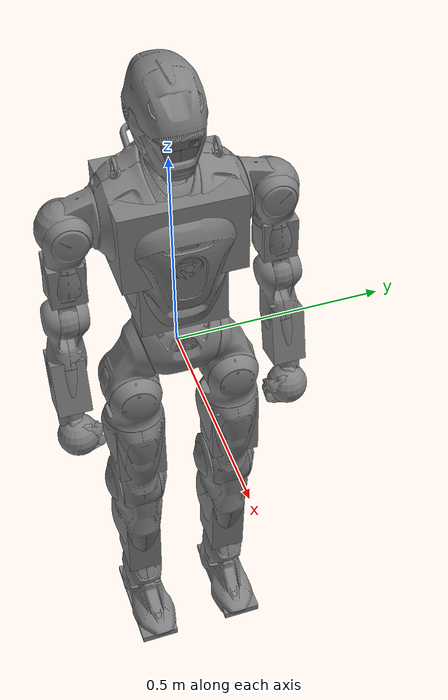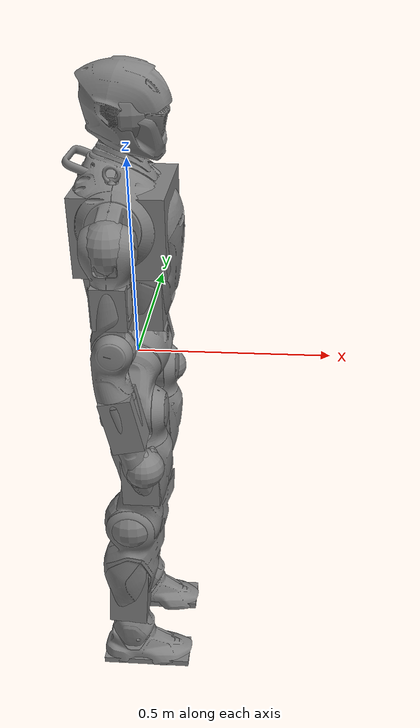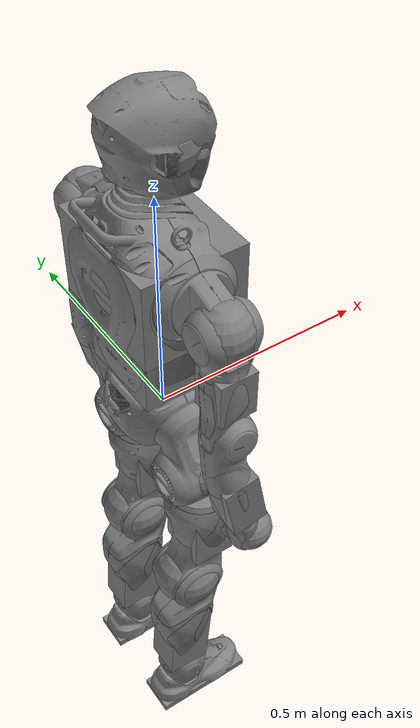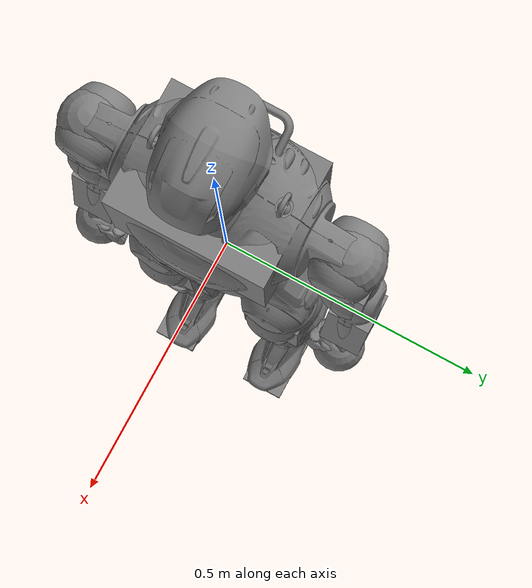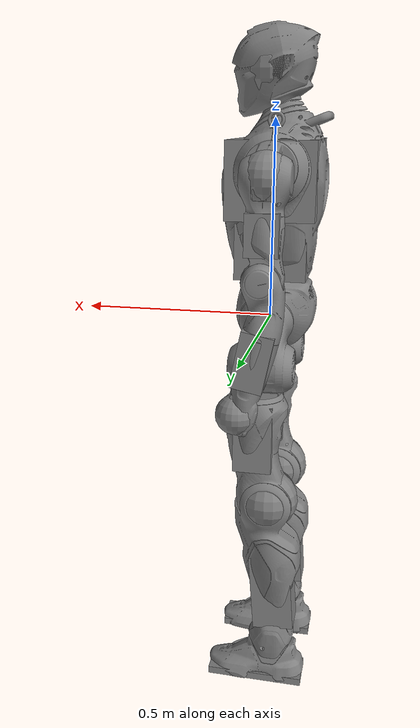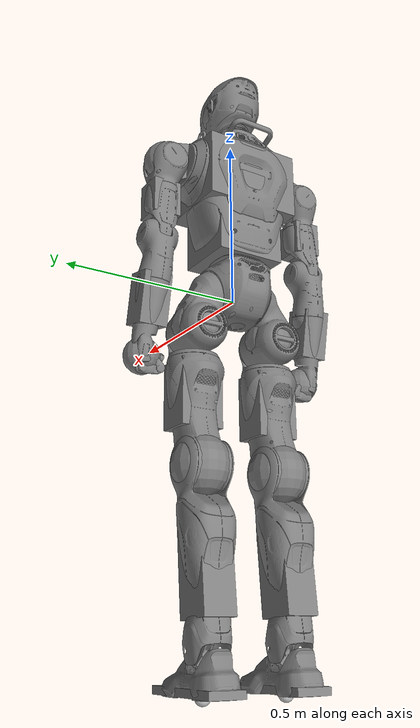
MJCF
<mujoco model="t800">
  <compiler angle="radian" meshdir="meshes_obj" />
  <asset>
    <mesh name="LINK_BASE" content_type="model/obj" file="LINK_BASE.obj" />
    <mesh name="LINK_HIP_PITCH_L" content_type="model/obj" file="LINK_HIP_PITCH_L.obj" />
    <mesh name="LINK_HIP_ROLL_L" content_type="model/obj" file="LINK_HIP_ROLL_L.obj" />
    <mesh name="LINK_HIP_YAW_L" content_type="model/obj" file="LINK_HIP_YAW_L.obj" />
    <mesh name="LINK_KNEE_PITCH_L" content_type="model/obj" file="LINK_KNEE_PITCH_L.obj" />
    <mesh name="LINK_ANKLE_PITCH_L" content_type="model/obj" file="LINK_ANKLE_PITCH_L.obj" />
    <mesh name="LINK_ANKLE_ROLL_L" content_type="model/obj" file="LINK_ANKLE_ROLL_L.obj" />
    <mesh name="LINK_HIP_PITCH_R" content_type="model/obj" file="LINK_HIP_PITCH_R.obj" />
    <mesh name="LINK_HIP_ROLL_R" content_type="model/obj" file="LINK_HIP_ROLL_R.obj" />
    <mesh name="LINK_HIP_YAW_R" content_type="model/obj" file="LINK_HIP_YAW_R.obj" />
    <mesh name="LINK_KNEE_PITCH_R" content_type="model/obj" file="LINK_KNEE_PITCH_R.obj" />
    <mesh name="LINK_ANKLE_PITCH_R" content_type="model/obj" file="LINK_ANKLE_PITCH_R.obj" />
    <mesh name="LINK_ANKLE_ROLL_R" content_type="model/obj" file="LINK_ANKLE_ROLL_R.obj" />
    <mesh name="LINK_TORSO_YAW" content_type="model/obj" file="LINK_TORSO_YAW.obj" />
    <mesh name="LINK_SHOULDER_PITCH_L" content_type="model/obj" file="LINK_SHOULDER_PITCH_L.obj" />
    <mesh name="LINK_SHOULDER_ROLL_L" content_type="model/obj" file="LINK_SHOULDER_ROLL_L.obj" />
    <mesh name="LINK_SHOULDER_YAW_L" content_type="model/obj" file="LINK_SHOULDER_YAW_L.obj" />
    <mesh name="LINK_ELBOW_PITCH_L" content_type="model/obj" file="LINK_ELBOW_PITCH_L.obj" />
    <mesh name="LINK_ELBOW_YAW_L" content_type="model/obj" file="LINK_ELBOW_YAW_L.obj" />
    <mesh name="LINK_SHOULDER_PITCH_R" content_type="model/obj" file="LINK_SHOULDER_PITCH_R.obj" />
    <mesh name="LINK_SHOULDER_ROLL_R" content_type="model/obj" file="LINK_SHOULDER_ROLL_R.obj" />
    <mesh name="LINK_SHOULDER_YAW_R" content_type="model/obj" file="LINK_SHOULDER_YAW_R.obj" />
    <mesh name="LINK_ELBOW_PITCH_R" content_type="model/obj" file="LINK_ELBOW_PITCH_R.obj" />
    <mesh name="LINK_ELBOW_YAW_R" content_type="model/obj" file="LINK_ELBOW_YAW_R.obj" />
    <mesh name="LINK_HEAD_PITCH" content_type="model/obj" file="LINK_HEAD_PITCH.obj" />
    <mesh name="LINK_HEAD_YAW" content_type="model/obj" file="LINK_HEAD_YAW.obj" />
  </asset>
  <worldbody>
    <body name="LINK_BASE">
      <freejoint name="root" />
      <geom type="mesh" contype="0" conaffinity="0" group="1" density="0" mesh="LINK_BASE" />
      <geom size="0.09" pos="-0.01 0 0.01" />
      <body name="LINK_HIP_PITCH_L" pos="0 0.079178 0">
        <inertial pos="0.0061914 0.039194 -0.0989976" quat="0.703048 -0.000940502 -0.0835001 0.706222" mass="3.53619" diaginertia="0.00795732 0.00716152 0.00476425" />
        <joint name="J00_HIP_PITCH_L" pos="0 0 0" axis="0 0.965926 -0.258819" range="-3.316 2.269" actuatorfrcrange="-415 415" />
        <geom type="mesh" contype="0" conaffinity="0" group="1" density="0" mesh="LINK_HIP_PITCH_L" />
        <geom size="0.07" pos="0 0.04 -0.1" />
        <body name="LINK_HIP_ROLL_L" pos="0.004662 0.040322 -0.10752">
          <inertial pos="0.0375309 4.95e-06 -0.0348455" quat="0.954117 -3.76557e-05 0.299433 -0.000109257" mass="0.851442" diaginertia="0.00291994 0.00257237 0.0014565" />
          <joint name="J01_HIP_ROLL_L" pos="0 0 0" axis="1 0 0" range="-1.082 2.059" actuatorfrcrange="-370 370" />
          <geom type="mesh" contype="0" conaffinity="0" group="1" density="0" mesh="LINK_HIP_ROLL_L" />
          <body name="LINK_HIP_YAW_L" pos="0.0094616 0 -0.080512">
            <inertial pos="-0.0182984 0.00236123 -0.176347" quat="0.709176 0.0588188 0.0462079 0.701053" mass="7.19482" diaginertia="0.115656 0.11402 0.0107766" />
            <joint name="J02_HIP_YAW_L" pos="0 0 0" axis="0 0 1" range="-1.42245 3.60228" actuatorfrcrange="-222 222" />
            <geom type="mesh" contype="0" conaffinity="0" group="1" density="0" mesh="LINK_HIP_YAW_L" />
            <geom size="0.05 0.06 0.09" pos="0 0.002 -0.1" type="box" />
            <body name="LINK_KNEE_PITCH_L" pos="-0.037707 0 -0.28792">
              <inertial pos="-0.0197449 0.00139162 -0.211907" quat="0.475454 0.0210361 0.0168989 0.879327" mass="5.99503" diaginertia="0.0858454 0.0856511 0.0115715" />
              <joint name="J03_KNEE_PITCH_L" pos="0 0 0" axis="0 1 0" range="0 2.355" actuatorfrcrange="-415 415" />
              <geom type="mesh" contype="0" conaffinity="0" group="1" density="0" mesh="LINK_KNEE_PITCH_L" />
              <geom size="0.08" />
              <geom size="0.055 0.045 0.12" pos="-0.02 0 -0.25" quat="0.9992 0 0.0399893 0" type="box" />
              <body name="LINK_ANKLE_PITCH_L" pos="-0.0027168 0 -0.43867">
                <inertial pos="-3.678e-05 0 -0.00887033" quat="0.707027 -0.0106245 -0.0106245 0.707027" mass="0.144221" diaginertia="8.493e-05 6.78768e-05 3.82432e-05" />
                <joint name="J04_ANKLE_PITCH_L" pos="0 0 0" axis="0 1 0" range="-0.68068 0.68068" actuatorfrcrange="-160 160" />
                <geom type="mesh" contype="0" conaffinity="0" group="1" density="0" mesh="LINK_ANKLE_PITCH_L" />
                <body name="LINK_ANKLE_ROLL_L" pos="0.0011073 0 -0.037928">
                  <inertial pos="-0.00128652 -0.00120557 -0.0229836" quat="0.461914 0.54264 0.559403 0.423375" mass="1.49539" diaginertia="0.00707244 0.00691502 0.00202937" />
                  <joint name="J05_ANKLE_ROLL_L" pos="0 0 0" axis="1 0 0" range="-0.3491 0.1745" actuatorfrcrange="-160 160" />
                  <geom type="mesh" contype="0" conaffinity="0" group="1" density="0" mesh="LINK_ANKLE_ROLL_L" />
                  <geom size="0.13 0.05 0.01" pos="0.02 0.00166 -0.054" type="box" />
                  <geom size="0.02" pos="0 0 -0.06453" contype="0" conaffinity="0" group="1" density="0" rgba="0.75294 0.75294 0.75294 1" />
                </body>
              </body>
            </body>
          </body>
        </body>
      </body>
      <body name="LINK_HIP_PITCH_R" pos="0 -0.079178 0">
        <inertial pos="0.0061914 -0.039194 -0.0989976" quat="0.706222 -0.0835001 -0.000940502 0.703048" mass="3.53619" diaginertia="0.00795732 0.00716152 0.00476425" />
        <joint name="J06_HIP_PITCH_R" pos="0 0 0" axis="0 0.965926 0.258819" range="-3.316 2.269" actuatorfrcrange="-415 415" />
        <geom type="mesh" contype="0" conaffinity="0" group="1" density="0" mesh="LINK_HIP_PITCH_R" />
        <geom size="0.07" pos="0 -0.04 -0.1" />
        <body name="LINK_HIP_ROLL_R" pos="0.004662 -0.040322 -0.10752">
          <inertial pos="0.0375309 -4.95e-06 -0.0348455" quat="0.954117 3.76557e-05 0.299433 0.000109257" mass="0.851442" diaginertia="0.00291994 0.00257237 0.0014565" />
          <joint name="J07_HIP_ROLL_R" pos="0 0 0" axis="1 0 0" range="-2.059 1.082" actuatorfrcrange="-370 370" />
          <geom type="mesh" contype="0" conaffinity="0" group="1" density="0" mesh="LINK_HIP_ROLL_R" />
          <body name="LINK_HIP_YAW_R" pos="0.0094616 0 -0.080512">
            <inertial pos="-0.0182984 -0.00236123 -0.176347" quat="0.701053 0.0462079 0.0588188 0.709176" mass="7.19482" diaginertia="0.115656 0.11402 0.0107766" />
            <joint name="J08_HIP_YAW_R" pos="0 0 0" axis="0 0 1" range="-3.60228 1.42245" actuatorfrcrange="-222 222" />
            <geom type="mesh" contype="0" conaffinity="0" group="1" density="0" mesh="LINK_HIP_YAW_R" />
            <geom size="0.05 0.06 0.09" pos="0 0.002 -0.1" type="box" />
            <body name="LINK_KNEE_PITCH_R" pos="-0.037707 0 -0.28792">
              <inertial pos="-0.0197449 -0.00139162 -0.211907" quat="0.879327 0.0168989 0.0210361 0.475454" mass="5.99503" diaginertia="0.0858454 0.0856511 0.0115715" />
              <joint name="J09_KNEE_PITCH_R" pos="0 0 0" axis="0 1 0" range="0 2.355" actuatorfrcrange="-415 415" />
              <geom type="mesh" contype="0" conaffinity="0" group="1" density="0" mesh="LINK_KNEE_PITCH_R" />
              <geom size="0.08" />
              <geom size="0.055 0.045 0.115" pos="-0.02 0 -0.25" quat="0.9992 0 0.0399893 0" type="box" />
              <body name="LINK_ANKLE_PITCH_R" pos="-0.0027168 0 -0.43867">
                <inertial pos="-3.678e-05 0 -0.00887033" quat="0.707027 -0.0106245 -0.0106245 0.707027" mass="0.144221" diaginertia="8.493e-05 6.78768e-05 3.82432e-05" />
                <joint name="J10_ANKLE_PITCH_R" pos="0 0 0" axis="0 1 0" range="-0.68068 0.68068" actuatorfrcrange="-160 160" />
                <geom type="mesh" contype="0" conaffinity="0" group="1" density="0" mesh="LINK_ANKLE_PITCH_R" />
                <body name="LINK_ANKLE_ROLL_R" pos="0.0011073 0 -0.037928">
                  <inertial pos="-0.00128652 0.00120557 -0.0229836" quat="0.423375 0.559403 0.54264 0.461914" mass="1.49539" diaginertia="0.00707244 0.00691502 0.00202937" />
                  <joint name="J11_ANKLE_ROLL_R" pos="0 0 0" axis="1 0 0" range="-0.1745 0.3491" actuatorfrcrange="-160 160" />
                  <geom type="mesh" contype="0" conaffinity="0" group="1" density="0" mesh="LINK_ANKLE_ROLL_R" />
                  <geom size="0.13 0.05 0.01" pos="0.02 -0.00166 -0.054" type="box" />
                  <geom size="0.02" pos="0 0 -0.06453" contype="0" conaffinity="0" group="1" density="0" rgba="0.75294 0.75294 0.75294 1" />
                </body>
              </body>
            </body>
          </body>
        </body>
      </body>
      <body name="LINK_TORSO_YAW" pos="0 0 0.10384">
        <inertial pos="-0.00880845 -0.0006861 0.222762" quat="0.998368 -0.00027422 -0.0570422 -0.0028246" mass="19.4108" diaginertia="0.256742 0.207512 0.15304" />
        <joint name="J12_TORSO_YAW" pos="0 0 0" axis="0 0 1" range="-4.381 1.2392" actuatorfrcrange="-222 222" />
        <geom type="mesh" contype="0" conaffinity="0" group="1" density="0" mesh="LINK_TORSO_YAW" />
        <geom size="0.09 0.1 0.07" pos="-0.007 -0.001 0.075" type="box" />
        <geom size="0.11 0.14 0.095" pos="-0.007 -0.001 0.25" type="box" />
        <body name="LINK_SHOULDER_PITCH_L" pos="-0.011 0.16303 0.27889">
          <inertial pos="-0.00615457 0.0528418 -0.0124871" quat="0.835175 0.547699 0.0286813 0.0410699" mass="1.76883" diaginertia="0.00240978 0.00213951 0.00130718" />
          <joint name="J13_SHOULDER_PITCH_L" pos="0 0 0" axis="0 0.996779 0.0801989" range="-2.967 2.793" actuatorfrcrange="-160 160" />
          <geom type="mesh" contype="0" conaffinity="0" group="1" density="0" mesh="LINK_SHOULDER_PITCH_L" />
          <geom size="0.06" pos="0 0.065 -0.012" />
          <body name="LINK_SHOULDER_ROLL_L" pos="0 0.062533 -0.015455">
            <inertial pos="-0.00557192 0.00446659 -0.0271293" quat="0.699304 -0.0958375 -0.196856 0.680468" mass="0.682893" diaginertia="0.00216819 0.00159945 0.0014132" />
            <joint name="J14_SHOULDER_ROLL_L" pos="0 0 0" axis="1 0 0" range="-0.384 2.443" actuatorfrcrange="-160 160" />
            <geom type="mesh" contype="0" conaffinity="0" group="1" density="0" mesh="LINK_SHOULDER_ROLL_L" />
            <body name="LINK_SHOULDER_YAW_L" pos="3.4602e-05 0.0085246 -0.082712">
              <inertial pos="0.00062214 0.00554981 -0.0898056" quat="0.706399 0.0160146 -0.024757 0.7072" mass="2.55202" diaginertia="0.00997961 0.00983419 0.00114425" />
              <joint name="J15_SHOULDER_YAW_L" pos="0 0 0" axis="0 -0.0714971 0.997441" range="-2.618 2.618" actuatorfrcrange="-160 160" />
              <geom type="mesh" contype="0" conaffinity="0" group="1" density="0" mesh="LINK_SHOULDER_YAW_L" />
              <geom size="0.04 0.04 0.05" pos="0.001 0.005 -0.04" type="box" />
              <body name="LINK_ELBOW_PITCH_L" pos="0.0019252 0.013597 -0.15075">
                <inertial pos="-0.00883497 0.00295203 -0.0733334" quat="0.992911 0.0869004 0.0117583 0.0802349" mass="1.19527" diaginertia="0.00319667 0.00310646 0.00126793" />
                <joint name="J16_ELBOW_PITCH_L" pos="0 0 0" axis="0 0.997441 0.0714971" range="-2.286 0.262" actuatorfrcrange="-160 160" />
                <geom type="mesh" contype="0" conaffinity="0" group="1" density="0" mesh="LINK_ELBOW_PITCH_L" />
                <geom size="0.05" />
                <body name="LINK_ELBOW_YAW_L" pos="-0.0022091 0.0094362 -0.13182">
                  <inertial pos="0.0130246 0.00448716 -0.0585067" quat="0.702488 -0.0450693 -0.106628 0.702218" mass="1.07982" diaginertia="0.00215594 0.00202244 0.000854076" />
                  <joint name="J17_ELBOW_YAW_L" pos="0 0 0" axis="-0.216439 -0.0698028 0.973797" range="-2.618 2.618" actuatorfrcrange="-52 52" />
                  <geom type="mesh" contype="0" conaffinity="0" group="1" density="0" mesh="LINK_ELBOW_YAW_L" />
                  <geom size="0.04 0.04 0.07" pos="0.014 0.005 -0.05" quat="0.995004 0 -0.0998334 0" type="box" />
                  <geom size="0.05" pos="0.055436 0.0034855 -0.192222" />
                </body>
              </body>
            </body>
          </body>
        </body>
        <body name="LINK_SHOULDER_PITCH_R" pos="-0.011 -0.16303 0.27889">
          <inertial pos="-0.00615457 -0.0528418 -0.0124871" quat="0.547699 0.835175 -0.0410699 -0.0286813" mass="1.76883" diaginertia="0.00240978 0.00213951 0.00130718" />
          <joint name="J20_SHOULDER_PITCH_R" pos="0 0 0" axis="0 0.996779 -0.0801989" range="-2.967 2.793" actuatorfrcrange="-160 160" />
          <geom type="mesh" contype="0" conaffinity="0" group="1" density="0" mesh="LINK_SHOULDER_PITCH_R" />
          <geom size="0.06" pos="0 -0.065 -0.012" />
          <body name="LINK_SHOULDER_ROLL_R" pos="0 -0.062533 -0.015455">
            <inertial pos="-0.00557192 -0.00446659 -0.0271293" quat="0.680468 -0.196856 -0.0958375 0.699304" mass="0.682893" diaginertia="0.00216819 0.00159945 0.0014132" />
            <joint name="J21_SHOULDER_ROLL_R" pos="0 0 0" axis="1 0 0" range="-2.443 0.384" actuatorfrcrange="-160 160" />
            <geom type="mesh" contype="0" conaffinity="0" group="1" density="0" mesh="LINK_SHOULDER_ROLL_R" />
            <body name="LINK_SHOULDER_YAW_R" pos="3.4602e-05 -0.0085246 -0.082712">
              <inertial pos="0.00062214 -0.00554981 -0.0898056" quat="0.7072 -0.024757 0.0160146 0.706399" mass="2.55202" diaginertia="0.00997961 0.00983419 0.00114425" />
              <joint name="J22_SHOULDER_YAW_R" pos="0 0 0" axis="0 0.0714971 0.997441" range="-2.618 2.618" actuatorfrcrange="-160 160" />
              <geom type="mesh" contype="0" conaffinity="0" group="1" density="0" mesh="LINK_SHOULDER_YAW_R" />
              <geom size="0.04 0.04 0.05" pos="0.001 -0.005 -0.04" type="box" />
              <body name="LINK_ELBOW_PITCH_R" pos="0.0019252 -0.013597 -0.15075">
                <inertial pos="-0.00883497 -0.00295203 -0.0733334" quat="0.992911 -0.0869004 0.0117583 -0.0802349" mass="1.19527" diaginertia="0.00319667 0.00310646 0.00126793" />
                <joint name="J23_ELBOW_PITCH_R" pos="0 0 0" axis="0 0.997441 -0.0714971" range="-2.286 0.262" actuatorfrcrange="-160 160" />
                <geom type="mesh" contype="0" conaffinity="0" group="1" density="0" mesh="LINK_ELBOW_PITCH_R" />
                <geom size="0.05" />
                <body name="LINK_ELBOW_YAW_R" pos="-0.0022091 -0.0094362 -0.13182">
                  <inertial pos="0.0130246 -0.00448716 -0.0585067" quat="0.702218 -0.106628 -0.0450693 0.702488" mass="1.07982" diaginertia="0.00215594 0.00202244 0.000854076" />
                  <joint name="J24_ELBOW_YAW_R" pos="0 0 0" axis="-0.216439 0.0698028 0.973797" range="-2.618 2.618" actuatorfrcrange="-52 52" />
                  <geom type="mesh" contype="0" conaffinity="0" group="1" density="0" mesh="LINK_ELBOW_YAW_R" />
                  <geom size="0.04 0.04 0.07" pos="0.014 -0.005 -0.05" quat="0.995004 0 -0.0998334 0" type="box" />
                  <geom size="0.05" pos="0.055436 -0.0034855 -0.192222" />
                </body>
              </body>
            </body>
          </body>
        </body>
        <body name="LINK_HEAD_PITCH" pos="-0.0113 0 0.38604">
          <inertial pos="0.00012689 0.00010014 0.0672953" quat="0.999045 -0.0436093 0.00159275 0.00209103" mass="0.707966" diaginertia="0.000660474 0.000564278 0.000455089" />
          <joint name="J27_HEAD_PITCH" pos="0 0 0" axis="0 1 0" range="-0.523 0.523" actuatorfrcrange="-52 52" />
          <geom type="mesh" contype="0" conaffinity="0" group="1" density="0" mesh="LINK_HEAD_PITCH" />
          <body name="LINK_HEAD_YAW" pos="0 0 0.040199">
            <inertial pos="0.0181326 4.92e-06 0.0928944" quat="0.338158 0.621066 0.621323 0.337468" mass="1.72377" diaginertia="0.00848513 0.00826129 0.0065396" />
            <joint name="J28_HEAD_YAW" pos="0 0 0" axis="0 0 1" range="-1.222 1.222" actuatorfrcrange="-52 52" />
            <geom type="mesh" contype="0" conaffinity="0" group="1" density="0" mesh="LINK_HEAD_YAW" />
            <geom size="0.08" pos="0.018 0 0.08" />
          </body>
        </body>
      </body>
    </body>
  </worldbody>
</mujoco>
